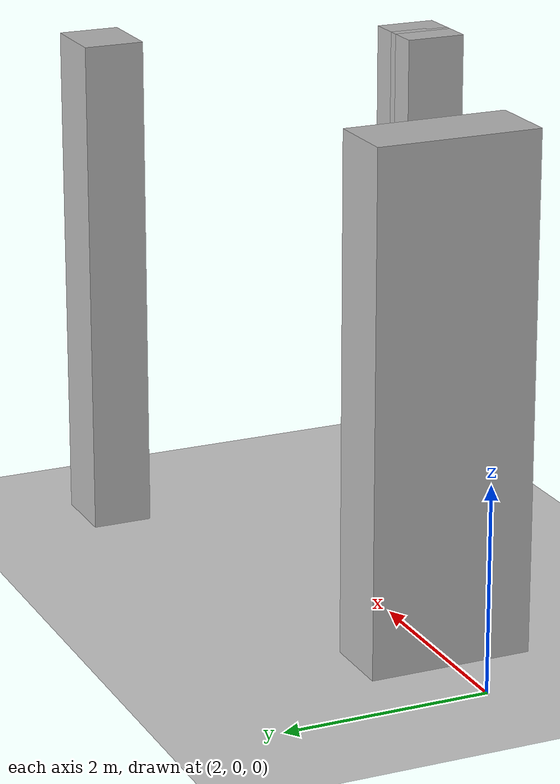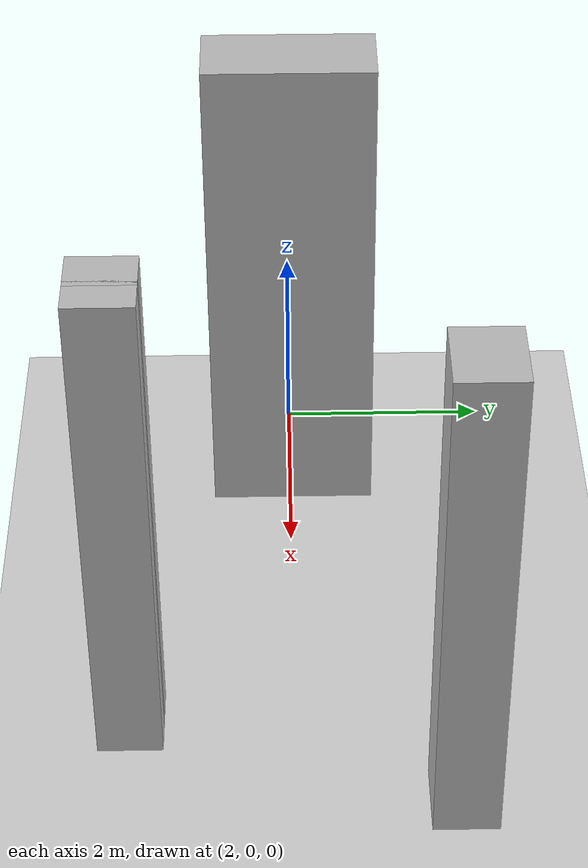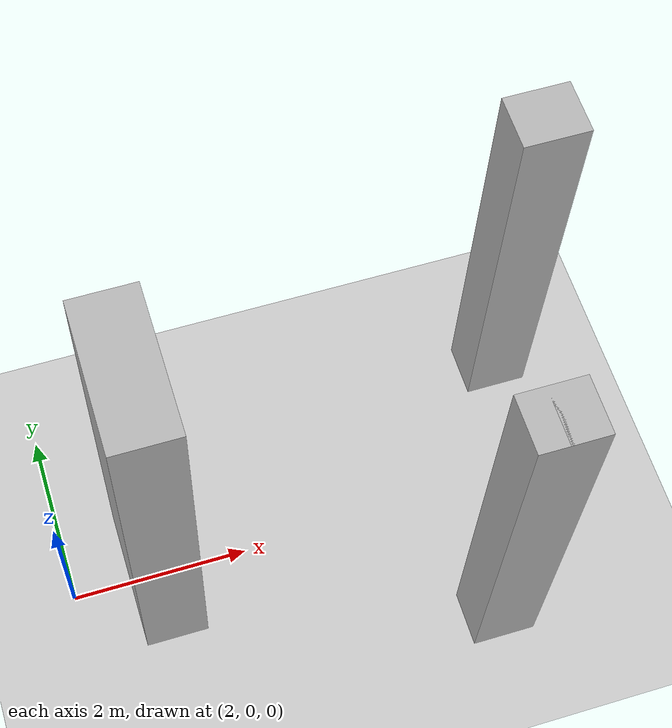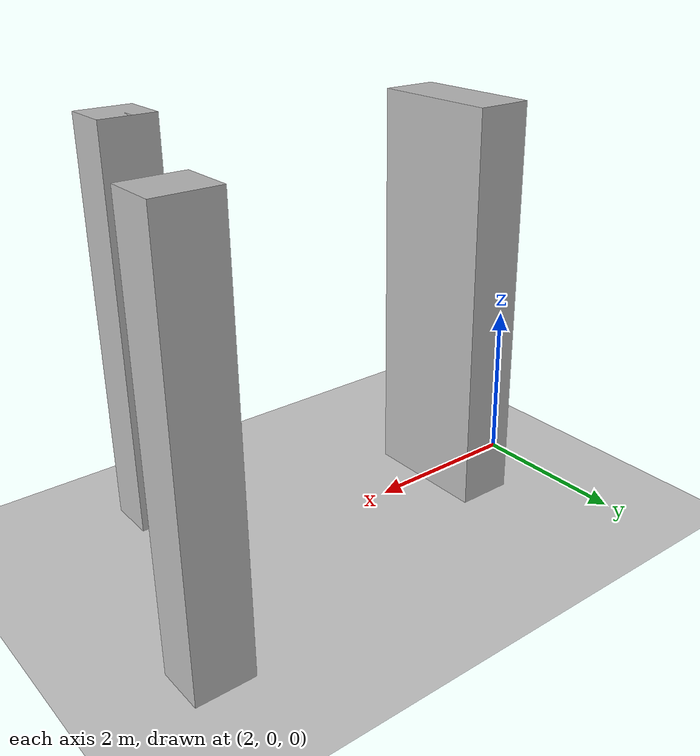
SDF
<sdf version="1.6">
 <world name="default">
  <plugin name="gazebo_octomap_plugin" filename="librotors_gazebo_octomap_plugin.so">
   <octomapPubTopic>world/octomap</octomapPubTopic>
   <octomapServiceName>world/get_octomap</octomapServiceName>
  </plugin>
  <plugin name="ros_interface_plugin" filename="librotors_gazebo_ros_interface_plugin.so"/>
  <light name="sun" type="directional">
   <pose>0 0 10 0 -0 0</pose>
   <diffuse>0.8 0.8 0.8 1</diffuse>
   <specular>0.2 0.2 0.2 1</specular>
   <attenuation>
    <range>1000</range>
    <constant>0.9</constant>
    <linear>0.01</linear>
    <quadratic>0.001</quadratic>
   </attenuation>
   <direction>-0.5 0.1 -0.9</direction>
  </light>
  <model name="ground_plane">
   <static>1</static>
   <link name="link">
    <collision name="collision">
     <geometry><plane><normal>0 0 1</normal><size>100 100</size></plane></geometry>
     <surface>
      <contact><collide_bitmask>65535</collide_bitmask></contact>
      <friction><ode><mu>100</mu><mu2>50</mu2></ode></friction>
     </surface>
    </collision>
    <visual name="visual">
     <cast_shadows>0</cast_shadows>
     <geometry><plane><normal>0 0 1</normal><size>100 100</size></plane></geometry>
     <material>
      <script><uri>file://media/materials/scripts/gazebo.material</uri><name>Gazebo/Grey</name></script>
     </material>
    </visual>
   </link>
  </model>
  <gravity>0 0 -9.8</gravity>
  <magnetic_field>6e-06 2.3e-05 -4.2e-05</magnetic_field>
  <atmosphere type="adiabatic"/>
  <physics name="default_physics" default="0" type="ode">
   <max_step_size>0.001</max_step_size>
   <real_time_factor>1</real_time_factor>
   <real_time_update_rate>1000</real_time_update_rate>
  </physics>
  <scene><ambient>0.4 0.4 0.4 1</ambient><background>0.7 0.7 0.7 1</background><shadows>1</shadows></scene>
  <spherical_coordinates>
   <surface_model>EARTH_WGS84</surface_model>
   <latitude_deg>0</latitude_deg>
   <longitude_deg>0</longitude_deg>
   <elevation>0</elevation>
   <heading_deg>0</heading_deg>
  </spherical_coordinates>
  <model name="obstacle_3">
   <link name="box_3_base_footprint">
    <inertial>
     <mass>1</mass>
     <inertia>
      <ixx>0.0741667</ixx>
      <ixy>0</ixy>
      <ixz>0</ixz>
      <iyy>0.0585417</iyy>
      <iyz>0</iyz>
      <izz>0.0260417</izz>
     </inertia>
    </inertial>
    <collision name="box_3_base_footprint_fixed_joint_lump__box_3_collision">
     <geometry><box><size>0.6 0.7 5</size></box></geometry>
     <surface>
      <contact><ode><kp>100000</kp><kd>100000</kd></ode></contact>
      <friction><ode><mu>0.1</mu><mu2>0.1</mu2><fdir1>1 0 0</fdir1></ode></friction>
     </surface>
    </collision>
    <visual name="box_3_base_footprint_visual">
     <geometry><box><size>0.001 0.001 0.001</size></box></geometry>
    </visual>
    <visual name="box_3_base_footprint_fixed_joint_lump__box_3_visual_1">
     <geometry><box><size>0.6 0.7 5</size></box></geometry>
     <material><script><uri>__default__</uri><name>__default__</name></script></material>
    </visual>
    <gravity>0</gravity>
   </link>
   <static>0</static>
   <plugin name="object_controller" filename="libgazebo_ros_planar_move.so">
    <commandTopic>obs_3/cmd_vel</commandTopic>
    <odometryTopic>obs_3/odom</odometryTopic>
    <odometryFrame>obs_3/odom</odometryFrame>
    <odometryRate>100.0</odometryRate>
    <robotBaseFrame>box_3_base_footprint</robotBaseFrame>
    <robotNamespace>/</robotNamespace>
   </plugin>
   <pose>7.50004 1.50296 2.5 0 -0 1.5703</pose>
  </model>
  <model name="obstacle_2">
   <link name="box_2_base_footprint">
    <inertial>
     <mass>1</mass>
     <inertia>
      <ixx>0.0741667</ixx>
      <ixy>0</ixy>
      <ixz>0</ixz>
      <iyy>0.0585417</iyy>
      <iyz>0</iyz>
      <izz>0.0260417</izz>
     </inertia>
    </inertial>
    <collision name="box_2_base_footprint_fixed_joint_lump__box_2_collision">
     <geometry><box><size>0.6 0.7 5</size></box></geometry>
     <surface>
      <contact><ode><kp>100000</kp><kd>100000</kd></ode></contact>
      <friction><ode><mu>0.1</mu><mu2>0.1</mu2><fdir1>1 0 0</fdir1></ode></friction>
     </surface>
    </collision>
    <visual name="box_2_base_footprint_visual"><geometry><box><size>0.6 0.1 5</size></box></geometry></visual>
    <visual name="box_2_base_footprint_fixed_joint_lump__box_2_visual_1">
     <geometry><box><size>0.6 0.7 5</size></box></geometry>
     <material><script><uri>__default__</uri><name>__default__</name></script></material>
    </visual>
    <gravity>0</gravity>
   </link>
   <static>0</static>
   <plugin name="object_controller" filename="libgazebo_ros_planar_move.so">
    <commandTopic>obs_2/cmd_vel</commandTopic>
    <odometryTopic>obs_2/odom</odometryTopic>
    <odometryFrame>obs_2/odom</odometryFrame>
    <odometryRate>100.0</odometryRate>
    <robotBaseFrame>box_2_base_footprint</robotBaseFrame>
    <robotNamespace>/</robotNamespace>
   </plugin>
   <pose>6.50004 -1.49704 2.5 0 -0 1.5703</pose>
  </model>
  <model name="obstacle_1">
   <link name="box_1_base_footprint">
    <inertial>
     <mass>1</mass>
     <inertia>
      <ixx>0.0741667</ixx>
      <ixy>0</ixy>
      <ixz>0</ixz>
      <iyy>0.0585417</iyy>
      <iyz>0</iyz>
      <izz>0.0260417</izz>
     </inertia>
    </inertial>
    <collision name="box_1_base_footprint_fixed_joint_lump__box_1_collision">
     <geometry><box><size>1.6 0.7 5</size></box></geometry>
     <surface>
      <contact><ode><kp>100000</kp><kd>100000</kd></ode></contact>
      <friction><ode><mu>0.1</mu><mu2>0.1</mu2><fdir1>1 0 0</fdir1></ode></friction>
     </surface>
    </collision>
    <visual name="box_1_base_footprint_visual">
     <geometry><box><size>0.001 0.001 0.001</size></box></geometry>
    </visual>
    <visual name="box_1_base_footprint_fixed_joint_lump__box_1_visual_1">
     <geometry><box><size>1.6 0.7 5</size></box></geometry>
     <material><script><uri>__default__</uri><name>__default__</name></script></material>
    </visual>
    <gravity>0</gravity>
   </link>
   <static>0</static>
   <plugin name="object_controller" filename="libgazebo_ros_planar_move.so">
    <commandTopic>obs_1/cmd_vel</commandTopic>
    <odometryTopic>obs_1/odom</odometryTopic>
    <odometryFrame>obs_2/odom</odometryFrame>
    <odometryRate>100.0</odometryRate>
    <robotBaseFrame>box_1_base_footprint</robotBaseFrame>
    <robotNamespace>/</robotNamespace>
   </plugin>
   <pose>3.00002 0.02845 2.5 0 -0 1.57</pose>
  </model>
  <plugin name="gazebo_octomap" filename="libBuildOctomapPlugin.so"/>
 </world>
</sdf>
